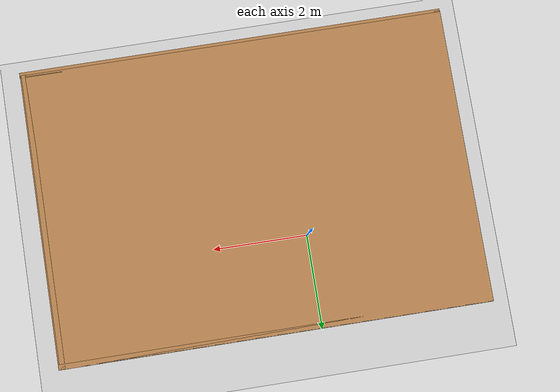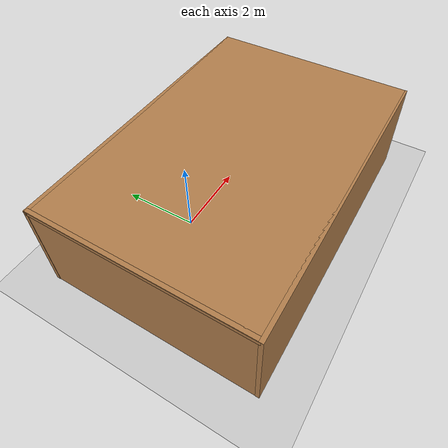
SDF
<?xml version="1.0" ?>
<sdf version='1.6'>
    <world name='default'>
        <light name='sun' type='directional'>
            <cast_shadows>1</cast_shadows>
            <pose frame=''>0 0 10 0 -0 0</pose>
            <diffuse>0.8 0.8 0.8 1</diffuse>
            <specular>0.2 0.2 0.2 1</specular>
            <attenuation>
                <range>1000</range>
                <constant>0.9</constant>
                <linear>0.01</linear>
                <quadratic>0.001</quadratic>
            </attenuation>
            <direction>-0.5 0.1 -0.9</direction>
        </light>
        <model name='ground_plane'>
            <static>1</static>
            <link name='link'>
                <collision name='collision'>
                    <geometry>
                        <plane>
                            <normal>0 0 1</normal>
                            <size>100 100</size>
                        </plane>
                    </geometry>
                    <surface>
                        <contact>
                            <collide_bitmask>65535</collide_bitmask>
                            <ode/>
                        </contact>
                        <friction>
                            <ode>
                                <mu>100</mu>
                                <mu2>50</mu2>
                            </ode>
                            <torsional>
                                <ode/>
                            </torsional>
                        </friction>
                        <bounce/>
                    </surface>
                    <max_contacts>10</max_contacts>
                </collision>
                <visual name='visual'>
                    <cast_shadows>0</cast_shadows>
                    <geometry>
                        <plane>
                            <normal>0 0 1</normal>
                            <size>100 100</size>
                        </plane>
                    </geometry>
                    <material>
                        <script>
                            <uri>file://media/materials/scripts/gazebo.material</uri>
                            <name>Gazebo/Grey</name>
                        </script>
                    </material>
                </visual>
                <self_collide>0</self_collide>
                <enable_wind>0</enable_wind>
                <kinematic>0</kinematic>
            </link>
        </model>
        <gravity>0 0 -9.8</gravity>
        <magnetic_field>6e-06 2.3e-05 -4.2e-05</magnetic_field>
        <atmosphere type='adiabatic'/>
        <physics name='default_physics' default='0' type='ode'>
            <max_step_size>0.001</max_step_size>
            <real_time_factor>1</real_time_factor>
            <real_time_update_rate>1000</real_time_update_rate>
        </physics>
        <scene>
            <ambient>0.4 0.4 0.4 1</ambient>
            <background>0.7 0.7 0.7 1</background>
            <shadows>1</shadows>
        </scene>
        <wind/>
        <spherical_coordinates>
            <surface_model>EARTH_WGS84</surface_model>
            <latitude_deg>0</latitude_deg>
            <longitude_deg>0</longitude_deg>
            <elevation>0</elevation>
            <heading_deg>0</heading_deg>
        </spherical_coordinates>
        <model name="obstacle_1">
            <pose>-0.56 0.596067 0.18 0 -0 1.57</pose>
            <self_collide>0</self_collide>
            <enable_wind>0</enable_wind>
            <link name="box">
                <gravity>1</gravity>
                <kinematic>0</kinematic>
                <inertial>
                    <mass>1</mass>
                    <inertia>
                        <ixx>0</ixx>
                        <ixy>0</ixy>
                        <ixz>0</ixz>
                        <iyy>0</iyy>
                        <iyz>0</iyz>
                        <izz>0</izz>
                    </inertia>
                    <pose frame=''>0 0 0 0 -0 0</pose>
                </inertial>
                <collision name="collision">
                    <geometry>
                        <box>
                          <size>0.28 0.23 0.4</size>
                        </box>
                    </geometry>
                      <surface>
                        <friction>
                            <ode>
                                <mu>0.0</mu>
                                <mu2>0.0</mu2>
                            </ode>
                        </friction>
                    </surface>
                    </collision>
                <visual name="visual">
                    <geometry>
			                  <box>
                          <size>0.28 0.23 0.4</size>
                        </box>
                    </geometry>
                    <material>
                        <lighting>1</lighting>
                        <script>
                            <uri>file://media/materials/scripts/gazebo.material</uri>
                            <name>Gazebo/Grey</name>
                        </script>
                        <shader type='pixel'>
                            <normal_map>__default__</normal_map>
                        </shader>
                        <ambient>0.3 0.3 0.3 1</ambient>
                        <diffuse>0 1 0 1</diffuse>
                        <specular>0.01 0.01 0.01 1</specular>
                        <emissive>0 0 0 1</emissive>
                    </material>
                </visual>
            </link>
            <static>0</static>
        </model>
        <model name="obstacle_2">
            <pose>0.25 -0.535336 0.18 0 -0 0</pose>
            <self_collide>0</self_collide>
            <enable_wind>0</enable_wind>
            <link name="box">
                <gravity>1</gravity>
                <kinematic>0</kinematic>
                <inertial>
                    <mass>1</mass>
                    <inertia>
                        <ixx>0</ixx>
                        <ixy>0</ixy>
                        <ixz>0</ixz>
                        <iyy>0</iyy>
                        <iyz>0</iyz>
                        <izz>0</izz>
                    </inertia>
                    <pose frame=''>0 0 0 0 -0 0</pose>
                </inertial>
                <collision name="collision">
                    <geometry>
                        <box>
                          <size>0.28 0.23 0.4</size>
                        </box>
                    </geometry>
                      <surface>
                        <friction>
                            <ode>
                                <mu>0.0</mu>
                                <mu2>0.0</mu2>
                            </ode>
                        </friction>
                    </surface>
                    </collision>
                <visual name="visual">
                    <geometry>
			                  <box>
                          <size>0.28 0.23 0.4</size>
                        </box>
                    </geometry>
                    <material>
                        <lighting>1</lighting>
                        <script>
                            <uri>file://media/materials/scripts/gazebo.material</uri>
                            <name>Gazebo/Grey</name>
                        </script>
                        <shader type='pixel'>
                            <normal_map>__default__</normal_map>
                        </shader>
                        <ambient>0.3 0.3 0.3 1</ambient>
                        <diffuse>0 1 0 1</diffuse>
                        <specular>0.01 0.01 0.01 1</specular>
                        <emissive>0 0 0 1</emissive>
                    </material>
                </visual>
            </link>
            <static>0</static>
        </model>
        <model name="obstacle_3">
            <pose>0.457784 -0.119653 0.18 0 -0 0.5</pose>
            <self_collide>0</self_collide>
            <enable_wind>0</enable_wind>
            <link name="box">
                <gravity>1</gravity>
                <kinematic>0</kinematic>
                <inertial>
                    <mass>1</mass>
                    <inertia>
                        <ixx>0</ixx>
                        <ixy>0</ixy>
                        <ixz>0</ixz>
                        <iyy>0</iyy>
                        <iyz>0</iyz>
                        <izz>0</izz>
                    </inertia>
                    <pose frame=''>0 0 0 0 -0 0</pose>
                </inertial>
                <collision name="collision">
                    <geometry>
                        <box>
                          <size>0.28 0.23 0.4</size>
                        </box>
                    </geometry>
                      <surface>
                        <friction>
                            <ode>
                                <mu>0.0</mu>
                                <mu2>0.0</mu2>
                            </ode>
                        </friction>
                    </surface>
                    </collision>
                <visual name="visual">
                    <geometry>
			                  <box>
                          <size>0.28 0.23 0.4</size>
                        </box>
                    </geometry>
                    <material>
                        <lighting>1</lighting>
                        <script>
                            <uri>file://media/materials/scripts/gazebo.material</uri>
                            <name>Gazebo/Grey</name>
                        </script>
                        <shader type='pixel'>
                            <normal_map>__default__</normal_map>
                        </shader>
                        <ambient>0.3 0.3 0.3 1</ambient>
                        <diffuse>0 1 0 1</diffuse>
                        <specular>0.01 0.01 0.01 1</specular>
                        <emissive>0 0 0 1</emissive>
                    </material>
                </visual>
            </link>
            <static>0</static>
        </model>

        <model name='square_room'>
            <pose frame=''>-0.006074 0.005376 0 0 -0 0</pose>
            <link name='Wall_0'>
                <collision name='Wall_0_Collision'>
                    <geometry>
                        <box>
                            <size>3 0.1 0.3</size>
                        </box>
                    </geometry>
                    <pose frame=''>0 0 0.15 0 -0 0</pose>
                    <max_contacts>10</max_contacts>
                    <surface>
                        <contact>
                            <ode/>
                        </contact>
                        <bounce/>
                        <friction>
                            <torsional>
                                <ode/>
                            </torsional>
                            <ode/>
                        </friction>
                    </surface>
                </collision>
                <visual name='Wall_0_Visual'>
                    <pose frame=''>0 0 0.15 0 -0 0</pose>
                    <geometry>
                        <box>
                            <size>3 0.1 0.3</size>
                        </box>
                    </geometry>
                    <material>
                        <script>
                            <uri>file://media/materials/scripts/gazebo.material</uri>
                            <name>Gazebo/Wood</name>
                        </script>
                        <ambient>1 1 1 1</ambient>
                    </material>
                    <meta>
                        <layer>0</layer>
                    </meta>
                </visual>
                <pose frame=''>-0 1.45 0 0 -0 0</pose>
                <self_collide>0</self_collide>
                <enable_wind>0</enable_wind>
                <kinematic>0</kinematic>
            </link>
            <link name='Wall_1'>
                <collision name='Wall_1_Collision'>
                    <geometry>
                        <box>
                            <size>3 0.1 0.3</size>
                        </box>
                    </geometry>
                    <pose frame=''>0 0 0.15 0 -0 0</pose>
                    <max_contacts>10</max_contacts>
                    <surface>
                        <contact>
                            <ode/>
                        </contact>
                        <bounce/>
                        <friction>
                            <torsional>
                                <ode/>
                            </torsional>
                            <ode/>
                        </friction>
                    </surface>
                </collision>
                <visual name='Wall_1_Visual'>
                    <pose frame=''>0 0 0.15 0 -0 0</pose>
                    <geometry>
                        <box>
                            <size>3 0.1 0.3</size>
                        </box>
                    </geometry>
                    <material>
                        <script>
                            <uri>file://media/materials/scripts/gazebo.material</uri>
                            <name>Gazebo/Wood</name>
                        </script>
                        <ambient>1 1 1 1</ambient>
                    </material>
                    <meta>
                        <layer>0</layer>
                    </meta>
                </visual>
                <pose frame=''>1.455 0 0 0 -0 -1.5708</pose>
                <self_collide>0</self_collide>
                <enable_wind>0</enable_wind>
                <kinematic>0</kinematic>
            </link>
            <link name='Wall_2'>
                <collision name='Wall_2_Collision'>
                    <geometry>
                        <box>
                            <size>3 0.1 0.3</size>
                        </box>
                    </geometry>
                    <pose frame=''>0 0 0.15 0 -0 0</pose>
                    <max_contacts>10</max_contacts>
                    <surface>
                        <contact>
                            <ode/>
                        </contact>
                        <bounce/>
                        <friction>
                            <torsional>
                                <ode/>
                            </torsional>
                            <ode/>
                        </friction>
                    </surface>
                </collision>
                <visual name='Wall_2_Visual'>
                    <pose frame=''>0 0 0.15 0 -0 0</pose>
                    <geometry>
                        <box>
                            <size>3 0.1 0.3</size>
                        </box>
                    </geometry>
                    <material>
                        <script>
                            <uri>file://media/materials/scripts/gazebo.material</uri>
                            <name>Gazebo/Wood</name>
                        </script>
                        <ambient>1 1 1 1</ambient>
                    </material>
                    <meta>
                        <layer>0</layer>
                    </meta>
                </visual>
                <pose frame=''>0.005 -1.45 0 0 -0 3.14159</pose>
                <self_collide>0</self_collide>
                <enable_wind>0</enable_wind>
                <kinematic>0</kinematic>
            </link>

            <link name='Wall_3'>
                <collision name='Wall_3_Collision'>
                    <geometry>
                        <box>
                            <size>3 0.1 0.3</size>
                        </box>
                    </geometry>
                    <pose frame=''>0 0 0.15 0 -0 0</pose>
                    <max_contacts>10</max_contacts>
                    <surface>
                        <contact>
                            <ode/>
                        </contact>
                        <bounce/>
                        <friction>
                            <torsional>
                                <ode/>
                            </torsional>
                            <ode/>
                        </friction>
                    </surface>
                </collision>
                <visual name='Wall_3_Visual'>
                    <pose frame=''>0 0 0.15 0 -0 0</pose>
                    <geometry>
                        <box>
                            <size>3 0.1 0.3</size>
                        </box>
                    </geometry>
                    <material>
                        <script>
                            <uri>file://media/materials/scripts/gazebo.material</uri>
                            <name>Gazebo/Wood</name>
                        </script>
                        <ambient>1 1 1 1</ambient>
                    </material>
                    <meta>
                        <layer>0</layer>
                    </meta>
                </visual>
                <pose frame=''>-1.455 0 0 0 -0 1.5708</pose>
                <self_collide>0</self_collide>
                <enable_wind>0</enable_wind>
                <kinematic>0</kinematic>
            </link>
            <static>1</static>
        </model>

        <model name='square_room_2'>
        <pose>0 0 1.1 0 0 0</pose>
        <link name='Wall_5'>
        <pose>1 1.8 0 0 -0 0</pose>
        <self_collide>0</self_collide>
        <enable_wind>0</enable_wind>
        <kinematic>0</kinematic>
        <visual name='Wall_5_Visual'>
            <pose>0 0 0.15 0 -0 0</pose>
            <geometry>
            <box>
                <size>8 0.1 2.5</size>
            </box>
            </geometry>
            <material>
            <script>
                <uri>file://media/materials/scripts/gazebo.material</uri>
                <name>Gazebo/Wood</name>
            </script>
            <ambient>1 1 1 1</ambient>
            <shader type='pixel'/>
            </material>
            <meta>
            <layer>0</layer>
            </meta>
            <transparency>0</transparency>
            <cast_shadows>1</cast_shadows>
        </visual>
        <collision name='Wall_5_Collision'>
            <laser_retro>0</laser_retro>
            <max_contacts>10</max_contacts>
            <pose>0 0 0.15 0 -0 0</pose>
            <geometry>
            <box>
                <size>8 0.1 2.5</size>
            </box>
            </geometry>
            <surface>
            <friction>
                <ode>
                <mu>1</mu>
                <mu2>1</mu2>
                <fdir1>0 0 0</fdir1>
                <slip1>0</slip1>
                <slip2>0</slip2>
                </ode>
                <torsional>
                <coefficient>1</coefficient>
                <patch_radius>0</patch_radius>
                <surface_radius>0</surface_radius>
                <use_patch_radius>1</use_patch_radius>
                <ode>
                    <slip>0</slip>
                </ode>
                </torsional>
            </friction>
            <bounce>
                <restitution_coefficient>0</restitution_coefficient>
                <threshold>1e+06</threshold>
            </bounce>
            <contact>
                <collide_without_contact>0</collide_without_contact>
                <collide_without_contact_bitmask>1</collide_without_contact_bitmask>
                <collide_bitmask>1</collide_bitmask>
                <ode>
                <soft_cfm>0</soft_cfm>
                <soft_erp>0.2</soft_erp>
                <kp>1e+13</kp>
                <kd>1</kd>
                <max_vel>0.01</max_vel>
                <min_depth>0</min_depth>
                </ode>
                <bullet>
                <split_impulse>1</split_impulse>
                <split_impulse_penetration_threshold>-0.01</split_impulse_penetration_threshold>
                <soft_cfm>0</soft_cfm>
                <soft_erp>0.2</soft_erp>
                <kp>1e+13</kp>
                <kd>1</kd>
                </bullet>
            </contact>
            </surface>
        </collision>
        </link>
        <link name='Wall_6'>
        <pose>4.92816 -0.906896 0 0 0 -1.5708</pose>
        <self_collide>0</self_collide>
        <enable_wind>0</enable_wind>
        <kinematic>0</kinematic>
        <visual name='Wall_6_Visual'>
            <pose>0 0 0.15 0 -0 0</pose>
            <geometry>
            <box>
                <size>5.5 0.1 2.5</size>
            </box>
            </geometry>
            <material>
            <script>
                <uri>file://media/materials/scripts/gazebo.material</uri>
                <name>Gazebo/Wood</name>
            </script>
            <ambient>1 1 1 1</ambient>
            <shader type='pixel'/>
            </material>
            <meta>
            <layer>0</layer>
            </meta>
            <transparency>0</transparency>
            <cast_shadows>1</cast_shadows>
        </visual>
        <collision name='Wall_6_Collision'>
            <laser_retro>0</laser_retro>
            <max_contacts>10</max_contacts>
            <pose>0 0 0.15 0 -0 0</pose>
            <geometry>
            <box>
                <size>5.5 0.1 2.5</size>
            </box>
            </geometry>
            <surface>
            <friction>
                <ode>
                <mu>1</mu>
                <mu2>1</mu2>
                <fdir1>0 0 0</fdir1>
                <slip1>0</slip1>
                <slip2>0</slip2>
                </ode>
                <torsional>
                <coefficient>1</coefficient>
                <patch_radius>0</patch_radius>
                <surface_radius>0</surface_radius>
                <use_patch_radius>1</use_patch_radius>
                <ode>
                    <slip>0</slip>
                </ode>
                </torsional>
            </friction>
            <bounce>
                <restitution_coefficient>0</restitution_coefficient>
                <threshold>1e+06</threshold>
            </bounce>
            <contact>
                <collide_without_contact>0</collide_without_contact>
                <collide_without_contact_bitmask>1</collide_without_contact_bitmask>
                <collide_bitmask>1</collide_bitmask>
                <ode>
                <soft_cfm>0</soft_cfm>
                <soft_erp>0.2</soft_erp>
                <kp>1e+13</kp>
                <kd>1</kd>
                <max_vel>0.01</max_vel>
                <min_depth>0</min_depth>
                </ode>
                <bullet>
                <split_impulse>1</split_impulse>
                <split_impulse_penetration_threshold>-0.01</split_impulse_penetration_threshold>
                <soft_cfm>0</soft_cfm>
                <soft_erp>0.2</soft_erp>
                <kp>1e+13</kp>
                <kd>1</kd>
                </bullet>
            </contact>
            </surface>
        </collision>
        </link>
        <link name='Wall_7'>
        <pose>1.004996 -3.65724 0 0 -0 3.14159</pose>
        <self_collide>0</self_collide>
        <enable_wind>0</enable_wind>
        <kinematic>0</kinematic>
        <visual name='Wall_7_Visual'>
            <pose>0 0 0.15 0 -0 0</pose>
            <geometry>
            <box>
                <size>8 0.1 2.5</size>
            </box>
            </geometry>
            <material>
            <script>
                <uri>file://media/materials/scripts/gazebo.material</uri>
                <name>Gazebo/Wood</name>
            </script>
            <ambient>1 1 1 1</ambient>
            <shader type='pixel'/>
            </material>
            <meta>
            <layer>0</layer>
            </meta>
            <transparency>0</transparency>
            <cast_shadows>1</cast_shadows>
        </visual>
        <collision name='Wall_7_Collision'>
            <laser_retro>0</laser_retro>
            <max_contacts>10</max_contacts>
            <pose>0 0 0.15 0 -0 0</pose>
            <geometry>
            <box>
                <size>8 0.1 2.5</size>
            </box>
            </geometry>
            <surface>
            <friction>
                <ode>
                <mu>1</mu>
                <mu2>1</mu2>
                <fdir1>0 0 0</fdir1>
                <slip1>0</slip1>
                <slip2>0</slip2>
                </ode>
                <torsional>
                <coefficient>1</coefficient>
                <patch_radius>0</patch_radius>
                <surface_radius>0</surface_radius>
                <use_patch_radius>1</use_patch_radius>
                <ode>
                    <slip>0</slip>
                </ode>
                </torsional>
            </friction>
            <bounce>
                <restitution_coefficient>0</restitution_coefficient>
                <threshold>1e+06</threshold>
            </bounce>
            <contact>
                <collide_without_contact>0</collide_without_contact>
                <collide_without_contact_bitmask>1</collide_without_contact_bitmask>
                <collide_bitmask>1</collide_bitmask>
                <ode>
                <soft_cfm>0</soft_cfm>
                <soft_erp>0.2</soft_erp>
                <kp>1e+13</kp>
                <kd>1</kd>
                <max_vel>0.01</max_vel>
                <min_depth>0</min_depth>
                </ode>
                <bullet>
                <split_impulse>1</split_impulse>
                <split_impulse_penetration_threshold>-0.01</split_impulse_penetration_threshold>
                <soft_cfm>0</soft_cfm>
                <soft_erp>0.2</soft_erp>
                <kp>1e+13</kp>
                <kd>1</kd>
                </bullet>
            </contact>
            </surface>
        </collision>
        </link>
        <link name='Wall_8'>
        <pose>-2.94149 -0.922665 0 0 -0 1.5708</pose>
        <self_collide>0</self_collide>
        <enable_wind>0</enable_wind>
        <kinematic>0</kinematic>
        <visual name='Wall_8_Visual'>
            <pose>0 0 0.15 0 -0 0</pose>
            <geometry>
            <box>
                <size>5.5 0.1 2.5</size>
            </box>
            </geometry>
            <material>
            <script>
                <uri>file://media/materials/scripts/gazebo.material</uri>
                <name>Gazebo/Wood</name>
            </script>
            <ambient>1 1 1 1</ambient>
            <shader type='pixel'/>
            </material>
            <meta>
            <layer>0</layer>
            </meta>
            <transparency>0</transparency>
            <cast_shadows>1</cast_shadows>
        </visual>
        <collision name='Wall_8_Collision'>
            <laser_retro>0</laser_retro>
            <max_contacts>10</max_contacts>
            <pose>0 0 0.15 0 -0 0</pose>
            <geometry>
            <box>
                <size>5.5 0.1 2.5</size>
            </box>
            </geometry>
            <surface>
            <friction>
                <ode>
                <mu>1</mu>
                <mu2>1</mu2>
                <fdir1>0 0 0</fdir1>
                <slip1>0</slip1>
                <slip2>0</slip2>
                </ode>
                <torsional>
                <coefficient>1</coefficient>
                <patch_radius>0</patch_radius>
                <surface_radius>0</surface_radius>
                <use_patch_radius>1</use_patch_radius>
                <ode>
                    <slip>0</slip>
                </ode>
                </torsional>
            </friction>
            <bounce>
                <restitution_coefficient>0</restitution_coefficient>
                <threshold>1e+06</threshold>
            </bounce>
            <contact>
                <collide_without_contact>0</collide_without_contact>
                <collide_without_contact_bitmask>1</collide_without_contact_bitmask>
                <collide_bitmask>1</collide_bitmask>
                <ode>
                <soft_cfm>0</soft_cfm>
                <soft_erp>0.2</soft_erp>
                <kp>1e+13</kp>
                <kd>1</kd>
                <max_vel>0.01</max_vel>
                <min_depth>0</min_depth>
                </ode>
                <bullet>
                <split_impulse>1</split_impulse>
                <split_impulse_penetration_threshold>-0.01</split_impulse_penetration_threshold>
                <soft_cfm>0</soft_cfm>
                <soft_erp>0.2</soft_erp>
                <kp>1e+13</kp>
                <kd>1</kd>
                </bullet>
            </contact>
            </surface>
        </collision>
        </link>
        <link name='Upper'>
        <pose>1 -0.9 1.2 0 -0 0</pose>
        <self_collide>0</self_collide>
        <enable_wind>0</enable_wind>
        <kinematic>0</kinematic>
        <visual name='Upper_Visual'>
            <pose>0 0 0.15 0 -0 0</pose>
            <geometry>
            <box>
                <size>8 5.5 0.1</size>
            </box>
            </geometry>
            <material>
            <script>
                <uri>file://media/materials/scripts/gazebo.material</uri>
                <name>Gazebo/Wood</name>
            </script>
            <ambient>1 1 1 1</ambient>
            <shader type='pixel'/>
            </material>
            <meta>
            <layer>0</layer>
            </meta>
            <transparency>0</transparency>
            <cast_shadows>1</cast_shadows>
        </visual>
        <collision name='Upper_Collision'>
            <laser_retro>0</laser_retro>
            <max_contacts>10</max_contacts>
            <pose>0 0 0.15 0 -0 0</pose>
            <geometry>
            <box>
                <size>8 5.5 0.1</size>
            </box>
            </geometry>
            <surface>
            <friction>
                <ode>
                <mu>1</mu>
                <mu2>1</mu2>
                <fdir1>0 0 0</fdir1>
                <slip1>0</slip1>
                <slip2>0</slip2>
                </ode>
                <torsional>
                <coefficient>1</coefficient>
                <patch_radius>0</patch_radius>
                <surface_radius>0</surface_radius>
                <use_patch_radius>1</use_patch_radius>
                <ode>
                    <slip>0</slip>
                </ode>
                </torsional>
            </friction>
            <bounce>
                <restitution_coefficient>0</restitution_coefficient>
                <threshold>1e+06</threshold>
            </bounce>
            <contact>
                <collide_without_contact>0</collide_without_contact>
                <collide_without_contact_bitmask>1</collide_without_contact_bitmask>
                <collide_bitmask>1</collide_bitmask>
                <ode>
                <soft_cfm>0</soft_cfm>
                <soft_erp>0.2</soft_erp>
                <kp>1e+13</kp>
                <kd>1</kd>
                <max_vel>0.01</max_vel>
                <min_depth>0</min_depth>
                </ode>
                <bullet>
                <split_impulse>1</split_impulse>
                <split_impulse_penetration_threshold>-0.01</split_impulse_penetration_threshold>
                <soft_cfm>0</soft_cfm>
                <soft_erp>0.2</soft_erp>
                <kp>1e+13</kp>
                <kd>1</kd>
                </bullet>
            </contact>
            </surface>
        </collision>
        </link>
        <static>1</static>
        <allow_auto_disable>1</allow_auto_disable>
    </model>

        <model name='goal_region_4'>
            <link name='link_0'>
                <inertial>
                    <mass>1</mass>
                    <inertia>
                        <ixx>0.166667</ixx>
                        <ixy>0</ixy>
                        <ixz>0</ixz>
                        <iyy>0.166667</iyy>
                        <iyz>0</iyz>
                        <izz>0.166667</izz>
                    </inertia>
                    <pose frame=''>0 0 0 0 -0 0</pose>
                </inertial>
                <pose frame=''>0 0 0 0 -0 0</pose>
                <gravity>0</gravity>
                <self_collide>0</self_collide>
                <kinematic>0</kinematic>
                <enable_wind>0</enable_wind>
                <visual name='visual'>
                    <pose frame=''>0 0 0 0 -0 0</pose>
                    <geometry>
                        <box>
                            <size>0.3 0.3 0.01</size>
                        </box>
                    </geometry>
                    <material>
                        <lighting>1</lighting>
                        <script>
                            <uri>file://media/materials/scripts/gazebo.material</uri>
                            <name>Gazebo/Grey</name>
                        </script>
                        <shader type='pixel'>
                            <normal_map>__default__</normal_map>
                        </shader>
                        <ambient>0.3 0.3 0.3 1</ambient>
                        <diffuse>1 0 0 1</diffuse>
                        <specular>0.01 0.01 0.01 1</specular>
                        <emissive>0 0 0 1</emissive>
                    </material>
                    <transparency>0</transparency>
                    <cast_shadows>1</cast_shadows>
                </visual>
            </link>
            <static>0</static>
            <allow_auto_disable>1</allow_auto_disable>
            <pose frame='stage_4'>0 0.5 0 0 -0 0</pose>
        </model>
    </world>
</sdf>
